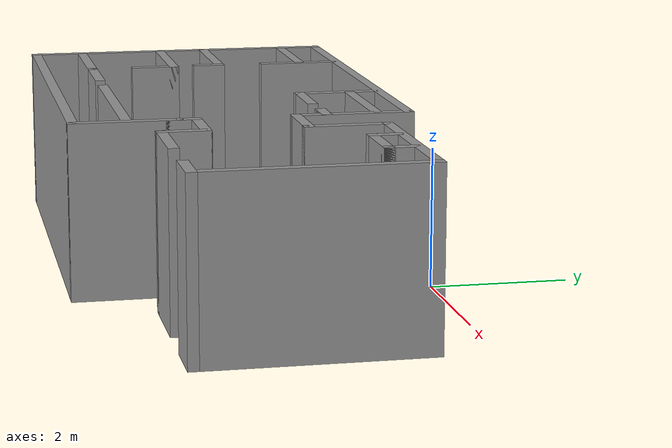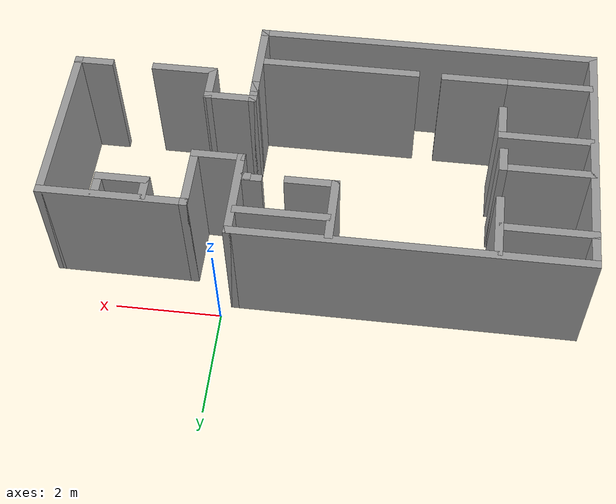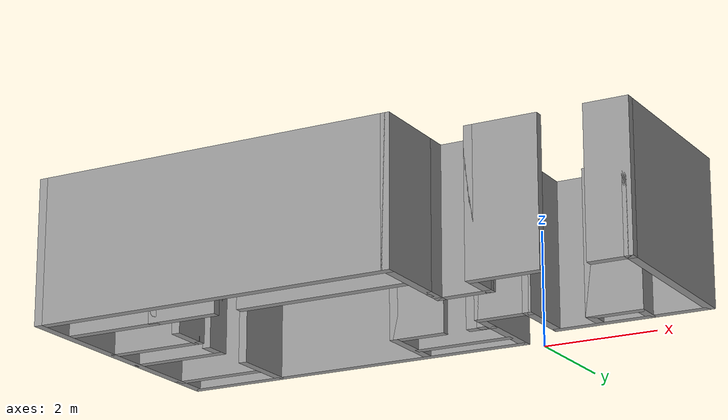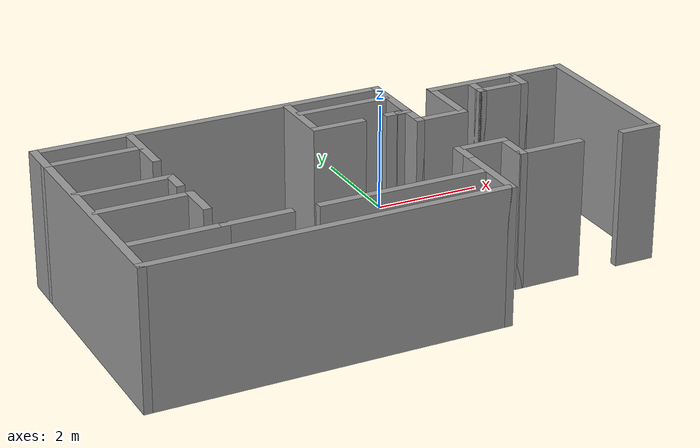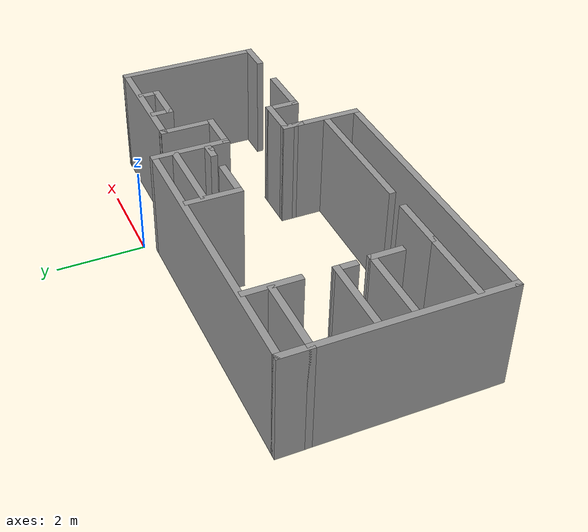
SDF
<?xml version='1.0'?>
<sdf version='1.6'>
  <model name='gusrud2_bulid'>
    <pose frame=''>-1.685 -2.65 0 0 -0 0</pose>
    <link name='Wall_0'>
      <collision name='Wall_0_Collision'>
        <geometry>
          <box>
            <size>4.25 0.15 2.5</size>
          </box>
        </geometry>
        <pose frame=''>0 0 1.25 0 -0 0</pose>
      </collision>
      <visual name='Wall_0_Visual'>
        <pose frame=''>0 0 1.25 0 -0 0</pose>
        <geometry>
          <box>
            <size>4.25 0.15 2.5</size>
          </box>
        </geometry>
        <material>
          <script>
            <uri>file://media/materials/scripts/gazebo.material</uri>
            <name>Gazebo/Grey</name>
          </script>
          <ambient>1 1 1 1</ambient>
        </material>
        <meta>
          <layer>0</layer>
        </meta>
      </visual>
      <pose frame=''>-4.905 -0.3 0 0 -0 -1.5708</pose>
    </link>
    <link name='Wall_1'>
      <collision name='Wall_1_Collision'>
        <geometry>
          <box>
            <size>6.5 0.15 2.5</size>
          </box>
        </geometry>
        <pose frame=''>0 0 1.25 0 -0 0</pose>
      </collision>
      <visual name='Wall_1_Visual'>
        <pose frame=''>0 0 1.25 0 -0 0</pose>
        <geometry>
          <box>
            <size>6.5 0.15 2.5</size>
          </box>
        </geometry>
        <material>
          <script>
            <uri>file://media/materials/scripts/gazebo.material</uri>
            <name>Gazebo/Grey</name>
          </script>
          <ambient>1 1 1 1</ambient>
        </material>
        <meta>
          <layer>0</layer>
        </meta>
      </visual>
      <pose frame=''>-1.73 -2.35 0 0 -0 0</pose>
    </link>
    <link name='Wall_11'>
      <collision name='Wall_11_Collision'>
        <geometry>
          <box>
            <size>0.15 0.15 2.5</size>
          </box>
        </geometry>
        <pose frame=''>0 0 1.25 0 -0 0</pose>
      </collision>
      <visual name='Wall_11_Visual'>
        <pose frame=''>0 0 1.25 0 -0 0</pose>
        <geometry>
          <box>
            <size>0.15 0.15 2.5</size>
          </box>
        </geometry>
        <material>
          <script>
            <uri>file://media/materials/scripts/gazebo.material</uri>
            <name>Gazebo/Grey</name>
          </script>
          <ambient>1 1 1 1</ambient>
        </material>
        <meta>
          <layer>0</layer>
        </meta>
      </visual>
      <pose frame=''>2.295 1.85 0 0 -0 0</pose>
    </link>
    <link name='Wall_12'>
      <collision name='Wall_12_Collision'>
        <geometry>
          <box>
            <size>0.16 0.15 2.5</size>
          </box>
        </geometry>
        <pose frame=''>0 0 1.25 0 -0 0</pose>
      </collision>
      <visual name='Wall_12_Visual'>
        <pose frame=''>0 0 1.25 0 -0 0</pose>
        <geometry>
          <box>
            <size>0.16 0.15 2.5</size>
          </box>
        </geometry>
        <material>
          <script>
            <uri>file://media/materials/scripts/gazebo.material</uri>
            <name>Gazebo/Grey</name>
          </script>
          <ambient>1 1 1 1</ambient>
        </material>
        <meta>
          <layer>0</layer>
        </meta>
      </visual>
      <pose frame=''>2.3 1.85 0 0 -0 0</pose>
    </link>
    <link name='Wall_13'>
      <collision name='Wall_13_Collision'>
        <geometry>
          <box>
            <size>2.75 0.15 2.5</size>
          </box>
        </geometry>
        <pose frame=''>0 0 1.25 0 -0 0</pose>
      </collision>
      <visual name='Wall_13_Visual'>
        <pose frame=''>0 0 1.25 0 -0 0</pose>
        <geometry>
          <box>
            <size>2.75 0.15 2.5</size>
          </box>
        </geometry>
        <material>
          <script>
            <uri>file://media/materials/scripts/gazebo.material</uri>
            <name>Gazebo/Grey</name>
          </script>
          <ambient>1 1 1 1</ambient>
        </material>
        <meta>
          <layer>0</layer>
        </meta>
      </visual>
      <pose frame=''>3.605 1.85 0 0 -0 0</pose>
    </link>
    <link name='Wall_14'>
      <collision name='Wall_14_Collision'>
        <geometry>
          <box>
            <size>3.25 0.15 2.5</size>
          </box>
        </geometry>
        <pose frame=''>0 0 1.25 0 -0 0</pose>
      </collision>
      <visual name='Wall_14_Visual'>
        <pose frame=''>0 0 1.25 0 -0 0</pose>
        <geometry>
          <box>
            <size>3.25 0.15 2.5</size>
          </box>
        </geometry>
        <material>
          <script>
            <uri>file://media/materials/scripts/gazebo.material</uri>
            <name>Gazebo/Grey</name>
          </script>
          <ambient>1 1 1 1</ambient>
        </material>
        <meta>
          <layer>0</layer>
        </meta>
      </visual>
      <pose frame=''>4.905 0.3 0 0 -0 -1.5708</pose>
    </link>
    <link name='Wall_15'>
      <collision name='Wall_15_Collision'>
        <geometry>
          <box>
            <size>0.75 0.15 2.5</size>
          </box>
        </geometry>
        <pose frame=''>0 0 1.25 0 -0 0</pose>
      </collision>
      <visual name='Wall_15_Visual'>
        <pose frame=''>0 0 1.25 0 -0 0</pose>
        <geometry>
          <box>
            <size>0.75 0.15 2.5</size>
          </box>
        </geometry>
        <material>
          <script>
            <uri>file://media/materials/scripts/gazebo.material</uri>
            <name>Gazebo/Grey</name>
          </script>
          <ambient>1 1 1 1</ambient>
        </material>
        <meta>
          <layer>0</layer>
        </meta>
      </visual>
      <pose frame=''>4.605 -1.25 0 0 -0 3.14159</pose>
    </link>
    <link name='Wall_17'>
      <collision name='Wall_17_Collision'>
        <geometry>
          <box>
            <size>0.25 0.15 2.5</size>
          </box>
        </geometry>
        <pose frame=''>0 0 1.25 0 -0 0</pose>
      </collision>
      <visual name='Wall_17_Visual'>
        <pose frame=''>0 0 1.25 0 -0 0</pose>
        <geometry>
          <box>
            <size>0.25 0.15 2.5</size>
          </box>
        </geometry>
        <material>
          <script>
            <uri>file://media/materials/scripts/gazebo.material</uri>
            <name>Gazebo/Grey</name>
          </script>
          <ambient>1 1 1 1</ambient>
        </material>
        <meta>
          <layer>0</layer>
        </meta>
      </visual>
      <pose frame=''>1.445 -0.95 0 0 -0 1.5708</pose>
    </link>
    <link name='Wall_2'>
      <collision name='Wall_2_Collision'>
        <geometry>
          <box>
            <size>1.5 0.15 2.5</size>
          </box>
        </geometry>
        <pose frame=''>0 0 1.25 0 -0 0</pose>
      </collision>
      <visual name='Wall_2_Visual'>
        <pose frame=''>0 0 1.25 0 -0 0</pose>
        <geometry>
          <box>
            <size>1.5 0.15 2.5</size>
          </box>
        </geometry>
        <material>
          <script>
            <uri>file://media/materials/scripts/gazebo.material</uri>
            <name>Gazebo/Grey</name>
          </script>
          <ambient>1 1 1 1</ambient>
        </material>
        <meta>
          <layer>0</layer>
        </meta>
      </visual>
      <pose frame=''>1.445 -1.675 0 0 -0 1.5708</pose>
    </link>
    <link name='Wall_20'>
      <collision name='Wall_20_Collision'>
        <geometry>
          <box>
            <size>0.5 0.15 2.5</size>
          </box>
        </geometry>
        <pose frame=''>0 0 1.25 0 -0 0</pose>
      </collision>
      <visual name='Wall_20_Visual'>
        <pose frame=''>0 0 1.25 0 -0 0</pose>
        <geometry>
          <box>
            <size>0.5 0.15 2.5</size>
          </box>
        </geometry>
        <material>
          <script>
            <uri>file://media/materials/scripts/gazebo.material</uri>
            <name>Gazebo/Grey</name>
          </script>
          <ambient>1 1 1 1</ambient>
        </material>
        <meta>
          <layer>0</layer>
        </meta>
      </visual>
      <pose frame=''>1.445 -0.825 0 0 -0 1.5708</pose>
    </link>
    <link name='Wall_21'>
      <collision name='Wall_21_Collision'>
        <geometry>
          <box>
            <size>1 0.15 2.5</size>
          </box>
        </geometry>
        <pose frame=''>0 0 1.25 0 -0 0</pose>
      </collision>
      <visual name='Wall_21_Visual'>
        <pose frame=''>0 0 1.25 0 -0 0</pose>
        <geometry>
          <box>
            <size>1 0.15 2.5</size>
          </box>
        </geometry>
        <material>
          <script>
            <uri>file://media/materials/scripts/gazebo.material</uri>
            <name>Gazebo/Grey</name>
          </script>
          <ambient>1 1 1 1</ambient>
        </material>
        <meta>
          <layer>0</layer>
        </meta>
      </visual>
      <pose frame=''>1.87 -0.65 0 0 -0 0</pose>
    </link>
    <link name='Wall_22'>
      <collision name='Wall_22_Collision'>
        <geometry>
          <box>
            <size>0.75 0.15 2.5</size>
          </box>
        </geometry>
        <pose frame=''>0 0 1.25 0 -0 0</pose>
      </collision>
      <visual name='Wall_22_Visual'>
        <pose frame=''>0 0 1.25 0 -0 0</pose>
        <geometry>
          <box>
            <size>0.75 0.15 2.5</size>
          </box>
        </geometry>
        <material>
          <script>
            <uri>file://media/materials/scripts/gazebo.material</uri>
            <name>Gazebo/Grey</name>
          </script>
          <ambient>1 1 1 1</ambient>
        </material>
        <meta>
          <layer>0</layer>
        </meta>
      </visual>
      <pose frame=''>2.295 -0.95 0 0 -0 -1.5708</pose>
    </link>
    <link name='Wall_23'>
      <collision name='Wall_23_Collision'>
        <geometry>
          <box>
            <size>1.25 0.15 2.5</size>
          </box>
        </geometry>
        <pose frame=''>0 0 1.25 0 -0 0</pose>
      </collision>
      <visual name='Wall_23_Visual'>
        <pose frame=''>0 0 1.25 0 -0 0</pose>
        <geometry>
          <box>
            <size>1.25 0.15 2.5</size>
          </box>
        </geometry>
        <material>
          <script>
            <uri>file://media/materials/scripts/gazebo.material</uri>
            <name>Gazebo/Grey</name>
          </script>
          <ambient>1 1 1 1</ambient>
        </material>
        <meta>
          <layer>0</layer>
        </meta>
      </visual>
      <pose frame=''>2.845 -1.25 0 0 -0 0</pose>
    </link>
    <link name='Wall_25'>
      <collision name='Wall_25_Collision'>
        <geometry>
          <box>
            <size>0.5 0.15 2.5</size>
          </box>
        </geometry>
        <pose frame=''>0 0 1.25 0 -0 0</pose>
      </collision>
      <visual name='Wall_25_Visual'>
        <pose frame=''>0 0 1.25 0 -0 0</pose>
        <geometry>
          <box>
            <size>0.5 0.15 2.5</size>
          </box>
        </geometry>
        <material>
          <script>
            <uri>file://media/materials/scripts/gazebo.material</uri>
            <name>Gazebo/Grey</name>
          </script>
          <ambient>1 1 1 1</ambient>
        </material>
        <meta>
          <layer>0</layer>
        </meta>
      </visual>
      <pose frame=''>3.065 1.625 0 0 -0 -1.5708</pose>
    </link>
    <link name='Wall_26'>
      <collision name='Wall_26_Collision'>
        <geometry>
          <box>
            <size>1 0.15 2.5</size>
          </box>
        </geometry>
        <pose frame=''>0 0 1.25 0 -0 0</pose>
      </collision>
      <visual name='Wall_26_Visual'>
        <pose frame=''>0 0 1.25 0 -0 0</pose>
        <geometry>
          <box>
            <size>1 0.15 2.5</size>
          </box>
        </geometry>
        <material>
          <script>
            <uri>file://media/materials/scripts/gazebo.material</uri>
            <name>Gazebo/Grey</name>
          </script>
          <ambient>1 1 1 1</ambient>
        </material>
        <meta>
          <layer>0</layer>
        </meta>
      </visual>
      <pose frame=''>3.49 1.45 0 0 -0 0</pose>
    </link>
    <link name='Wall_27'>
      <collision name='Wall_27_Collision'>
        <geometry>
          <box>
            <size>0.5 0.15 2.5</size>
          </box>
        </geometry>
        <pose frame=''>0 0 1.25 0 -0 0</pose>
      </collision>
      <visual name='Wall_27_Visual'>
        <pose frame=''>0 0 1.25 0 -0 0</pose>
        <geometry>
          <box>
            <size>0.5 0.15 2.5</size>
          </box>
        </geometry>
        <material>
          <script>
            <uri>file://media/materials/scripts/gazebo.material</uri>
            <name>Gazebo/Grey</name>
          </script>
          <ambient>1 1 1 1</ambient>
        </material>
        <meta>
          <layer>0</layer>
        </meta>
      </visual>
      <pose frame=''>3.915 1.625 0 0 -0 1.5708</pose>
    </link>
    <link name='Wall_29'>
      <collision name='Wall_29_Collision'>
        <geometry>
          <box>
            <size>1.25 0.15 2.5</size>
          </box>
        </geometry>
        <pose frame=''>0 0 1.25 0 -0 0</pose>
      </collision>
      <visual name='Wall_29_Visual'>
        <pose frame=''>0 0 1.25 0 -0 0</pose>
        <geometry>
          <box>
            <size>1.25 0.15 2.5</size>
          </box>
        </geometry>
        <material>
          <script>
            <uri>file://media/materials/scripts/gazebo.material</uri>
            <name>Gazebo/Grey</name>
          </script>
          <ambient>1 1 1 1</ambient>
        </material>
        <meta>
          <layer>0</layer>
        </meta>
      </visual>
      <pose frame=''>-0.315 1.71 0 0 -0 -1.5708</pose>
    </link>
    <link name='Wall_32'>
      <collision name='Wall_32_Collision'>
        <geometry>
          <box>
            <size>0.15 0.15 2.5</size>
          </box>
        </geometry>
        <pose frame=''>0 0 1.25 0 -0 0</pose>
      </collision>
      <visual name='Wall_32_Visual'>
        <pose frame=''>0 0 1.25 0 -0 0</pose>
        <geometry>
          <box>
            <size>0.15 0.15 2.5</size>
          </box>
        </geometry>
        <material>
          <script>
            <uri>file://media/materials/scripts/gazebo.material</uri>
            <name>Gazebo/Grey</name>
          </script>
          <ambient>1 1 1 1</ambient>
        </material>
        <meta>
          <layer>0</layer>
        </meta>
      </visual>
      <pose frame=''>1.285 1.16 0 0 -0 0</pose>
    </link>
    <link name='Wall_34'>
      <collision name='Wall_34_Collision'>
        <geometry>
          <box>
            <size>0.15 0.15 2.5</size>
          </box>
        </geometry>
        <pose frame=''>0 0 1.25 0 -0 0</pose>
      </collision>
      <visual name='Wall_34_Visual'>
        <pose frame=''>0 0 1.25 0 -0 0</pose>
        <geometry>
          <box>
            <size>0.15 0.15 2.5</size>
          </box>
        </geometry>
        <material>
          <script>
            <uri>file://media/materials/scripts/gazebo.material</uri>
            <name>Gazebo/Grey</name>
          </script>
          <ambient>1 1 1 1</ambient>
        </material>
        <meta>
          <layer>0</layer>
        </meta>
      </visual>
      <pose frame=''>1.285 1.16 0 0 -0 0</pose>
    </link>
    <link name='Wall_37'>
      <collision name='Wall_37_Collision'>
        <geometry>
          <box>
            <size>1.75 0.15 2.5</size>
          </box>
        </geometry>
        <pose frame=''>0 0 1.25 0 -0 0</pose>
      </collision>
      <visual name='Wall_37_Visual'>
        <pose frame=''>0 0 1.25 0 -0 0</pose>
        <geometry>
          <box>
            <size>1.75 0.15 2.5</size>
          </box>
        </geometry>
        <material>
          <script>
            <uri>file://media/materials/scripts/gazebo.material</uri>
            <name>Gazebo/Grey</name>
          </script>
          <ambient>1 1 1 1</ambient>
        </material>
        <meta>
          <layer>0</layer>
        </meta>
      </visual>
      <pose frame=''>0.565 1.9 0 0 -0 0</pose>
    </link>
    <link name='Wall_4'>
      <collision name='Wall_4_Collision'>
        <geometry>
          <box>
            <size>0.75 0.15 2.5</size>
          </box>
        </geometry>
        <pose frame=''>0 0 1.25 0 -0 0</pose>
      </collision>
      <visual name='Wall_4_Visual'>
        <pose frame=''>0 0 1.25 0 -0 0</pose>
        <geometry>
          <box>
            <size>0.75 0.15 2.5</size>
          </box>
        </geometry>
        <material>
          <script>
            <uri>file://media/materials/scripts/gazebo.material</uri>
            <name>Gazebo/Grey</name>
          </script>
          <ambient>1 1 1 1</ambient>
        </material>
        <meta>
          <layer>0</layer>
        </meta>
      </visual>
      <pose frame=''>-4.905 2.05 0 0 -0 1.5708</pose>
    </link>
    <link name='Wall_5'>
      <collision name='Wall_5_Collision'>
        <geometry>
          <box>
            <size>6.5 0.15 2.5</size>
          </box>
        </geometry>
        <pose frame=''>0 0 1.25 0 -0 0</pose>
      </collision>
      <visual name='Wall_5_Visual'>
        <pose frame=''>0 0 1.25 0 -0 0</pose>
        <geometry>
          <box>
            <size>6.5 0.15 2.5</size>
          </box>
        </geometry>
        <material>
          <script>
            <uri>file://media/materials/scripts/gazebo.material</uri>
            <name>Gazebo/Grey</name>
          </script>
          <ambient>1 1 1 1</ambient>
        </material>
        <meta>
          <layer>0</layer>
        </meta>
      </visual>
      <pose frame=''>-1.73 2.35 0 0 -0 0</pose>
    </link>
    <link name='Wall_51'>
      <collision name='Wall_51_Collision'>
        <geometry>
          <box>
            <size>1.75 0.15 2.5</size>
          </box>
        </geometry>
        <pose frame=''>0 0 1.25 0 -0 0</pose>
      </collision>
      <visual name='Wall_51_Visual'>
        <pose frame=''>0 0 1.25 0 -0 0</pose>
        <geometry>
          <box>
            <size>1.75 0.15 2.5</size>
          </box>
        </geometry>
        <material>
          <script>
            <uri>file://media/materials/scripts/gazebo.material</uri>
            <name>Gazebo/Grey</name>
          </script>
          <ambient>1 1 1 1</ambient>
        </material>
        <meta>
          <layer>0</layer>
        </meta>
      </visual>
      <pose frame=''>-4.105 1.75 0 0 -0 0</pose>
    </link>
    <link name='Wall_55'>
      <collision name='Wall_55_Collision'>
        <geometry>
          <box>
            <size>1.75 0.15 2.5</size>
          </box>
        </geometry>
        <pose frame=''>0 0 1.25 0 -0 0</pose>
      </collision>
      <visual name='Wall_55_Visual'>
        <pose frame=''>0 0 1.25 0 -0 0</pose>
        <geometry>
          <box>
            <size>1.75 0.15 2.5</size>
          </box>
        </geometry>
        <material>
          <script>
            <uri>file://media/materials/scripts/gazebo.material</uri>
            <name>Gazebo/Grey</name>
          </script>
          <ambient>1 1 1 1</ambient>
        </material>
        <meta>
          <layer>0</layer>
        </meta>
      </visual>
      <pose frame=''>-4.025 -0.3 0 0 -0 0</pose>
    </link>
    <link name='Wall_6'>
      <collision name='Wall_6_Collision'>
        <geometry>
          <box>
            <size>1.75 0.15 2.5</size>
          </box>
        </geometry>
        <pose frame=''>0 0 1.25 0 -0 0</pose>
      </collision>
      <visual name='Wall_6_Visual'>
        <pose frame=''>0 0 1.25 0 -0 0</pose>
        <geometry>
          <box>
            <size>1.75 0.15 2.5</size>
          </box>
        </geometry>
        <material>
          <script>
            <uri>file://media/materials/scripts/gazebo.material</uri>
            <name>Gazebo/Grey</name>
          </script>
          <ambient>1 1 1 1</ambient>
        </material>
        <meta>
          <layer>0</layer>
        </meta>
      </visual>
      <pose frame=''>1.445 1.55 0 0 -0 -1.5708</pose>
    </link>
    <link name='Wall_61'>
      <collision name='Wall_61_Collision'>
        <geometry>
          <box>
            <size>1.75 0.15 2.5</size>
          </box>
        </geometry>
        <pose frame=''>0 0 1.25 0 -0 0</pose>
      </collision>
      <visual name='Wall_61_Visual'>
        <pose frame=''>0 0 1.25 0 -0 0</pose>
        <geometry>
          <box>
            <size>1.75 0.15 2.5</size>
          </box>
        </geometry>
        <material>
          <script>
            <uri>file://media/materials/scripts/gazebo.material</uri>
            <name>Gazebo/Grey</name>
          </script>
          <ambient>1 1 1 1</ambient>
        </material>
        <meta>
          <layer>0</layer>
        </meta>
      </visual>
      <pose frame=''>-4.015 -1.6 0 0 -0 3.14159</pose>
    </link>
    <link name='Wall_63'>
      <collision name='Wall_63_Collision'>
        <geometry>
          <box>
            <size>1.75 0.15 2.5</size>
          </box>
        </geometry>
        <pose frame=''>0 0 1.25 0 -0 0</pose>
      </collision>
      <visual name='Wall_63_Visual'>
        <pose frame=''>0 0 1.25 0 -0 0</pose>
        <geometry>
          <box>
            <size>1.75 0.15 2.5</size>
          </box>
        </geometry>
        <material>
          <script>
            <uri>file://media/materials/scripts/gazebo.material</uri>
            <name>Gazebo/Grey</name>
          </script>
          <ambient>1 1 1 1</ambient>
        </material>
        <meta>
          <layer>0</layer>
        </meta>
      </visual>
      <pose frame=''>-4.065 0.44 0 0 -0 0</pose>
    </link>
    <link name='Wall_65'>
      <collision name='Wall_65_Collision'>
        <geometry>
          <box>
            <size>0.15 0.15 2.5</size>
          </box>
        </geometry>
        <pose frame=''>0 0 1.25 0 -0 0</pose>
      </collision>
      <visual name='Wall_65_Visual'>
        <pose frame=''>0 0 1.25 0 -0 0</pose>
        <geometry>
          <box>
            <size>0.15 0.15 2.5</size>
          </box>
        </geometry>
        <material>
          <script>
            <uri>file://media/materials/scripts/gazebo.material</uri>
            <name>Gazebo/Grey</name>
          </script>
          <ambient>1 1 1 1</ambient>
        </material>
        <meta>
          <layer>0</layer>
        </meta>
      </visual>
      <pose frame=''>1.445 0.75 0 0 -0 0</pose>
    </link>
    <link name='Wall_66'>
      <collision name='Wall_66_Collision'>
        <geometry>
          <box>
            <size>1 0.15 2.5</size>
          </box>
        </geometry>
        <pose frame=''>0 0 1.25 0 -0 0</pose>
      </collision>
      <visual name='Wall_66_Visual'>
        <pose frame=''>0 0 1.25 0 -0 0</pose>
        <geometry>
          <box>
            <size>1 0.15 2.5</size>
          </box>
        </geometry>
        <material>
          <script>
            <uri>file://media/materials/scripts/gazebo.material</uri>
            <name>Gazebo/Grey</name>
          </script>
          <ambient>1 1 1 1</ambient>
        </material>
        <meta>
          <layer>0</layer>
        </meta>
      </visual>
      <pose frame=''>1.87 0.75 0 0 -0 0</pose>
    </link>
    <link name='Wall_68'>
      <collision name='Wall_68_Collision'>
        <geometry>
          <box>
            <size>1.25 0.15 2.5</size>
          </box>
        </geometry>
        <pose frame=''>0 0 1.25 0 -0 0</pose>
      </collision>
      <visual name='Wall_68_Visual'>
        <pose frame=''>0 0 1.25 0 -0 0</pose>
        <geometry>
          <box>
            <size>1.25 0.15 2.5</size>
          </box>
        </geometry>
        <material>
          <script>
            <uri>file://media/materials/scripts/gazebo.material</uri>
            <name>Gazebo/Grey</name>
          </script>
          <ambient>1 1 1 1</ambient>
        </material>
        <meta>
          <layer>0</layer>
        </meta>
      </visual>
      <pose frame=''>-3.235 1.73 0 0 -0 -1.5708</pose>
    </link>
    <link name='Wall_71'>
      <collision name='Wall_71_Collision'>
        <geometry>
          <box>
            <size>0.5 0.15 2.5</size>
          </box>
        </geometry>
        <pose frame=''>0 0 1.25 0 -0 0</pose>
      </collision>
      <visual name='Wall_71_Visual'>
        <pose frame=''>0 0 1.25 0 -0 0</pose>
        <geometry>
          <box>
            <size>0.5 0.15 2.5</size>
          </box>
        </geometry>
        <material>
          <script>
            <uri>file://media/materials/scripts/gazebo.material</uri>
            <name>Gazebo/Grey</name>
          </script>
          <ambient>1 1 1 1</ambient>
        </material>
        <meta>
          <layer>0</layer>
        </meta>
      </visual>
      <pose frame=''>-3.265 0.265 0 0 -0 -1.5708</pose>
    </link>
    <link name='Wall_73'>
      <collision name='Wall_73_Collision'>
        <geometry>
          <box>
            <size>0.75 0.15 2.5</size>
          </box>
        </geometry>
        <pose frame=''>0 0 1.25 0 -0 0</pose>
      </collision>
      <visual name='Wall_73_Visual'>
        <pose frame=''>0 0 1.25 0 -0 0</pose>
        <geometry>
          <box>
            <size>0.75 0.15 2.5</size>
          </box>
        </geometry>
        <material>
          <script>
            <uri>file://media/materials/scripts/gazebo.material</uri>
            <name>Gazebo/Grey</name>
          </script>
          <ambient>1 1 1 1</ambient>
        </material>
        <meta>
          <layer>0</layer>
        </meta>
      </visual>
      <pose frame=''>-3.225 -0.6 0 0 -0 -1.5708</pose>
    </link>
    <link name='Wall_75'>
      <collision name='Wall_75_Collision'>
        <geometry>
          <box>
            <size>1.25 0.15 2.5</size>
          </box>
        </geometry>
        <pose frame=''>0 0 1.25 0 -0 0</pose>
      </collision>
      <visual name='Wall_75_Visual'>
        <pose frame=''>0 0 1.25 0 -0 0</pose>
        <geometry>
          <box>
            <size>1.25 0.15 2.5</size>
          </box>
        </geometry>
        <material>
          <script>
            <uri>file://media/materials/scripts/gazebo.material</uri>
            <name>Gazebo/Grey</name>
          </script>
          <ambient>1 1 1 1</ambient>
        </material>
        <meta>
          <layer>0</layer>
        </meta>
      </visual>
      <pose frame=''>-2.665 -1.6 0 0 -0 0</pose>
    </link>
    <link name='Wall_77'>
      <collision name='Wall_77_Collision'>
        <geometry>
          <box>
            <size>3 0.15 2.5</size>
          </box>
        </geometry>
        <pose frame=''>0 0 1.25 0 -0 0</pose>
      </collision>
      <visual name='Wall_77_Visual'>
        <pose frame=''>0 0 1.25 0 -0 0</pose>
        <geometry>
          <box>
            <size>3 0.15 2.5</size>
          </box>
        </geometry>
        <material>
          <script>
            <uri>file://media/materials/scripts/gazebo.material</uri>
            <name>Gazebo/Grey</name>
          </script>
          <ambient>1 1 1 1</ambient>
        </material>
        <meta>
          <layer>0</layer>
        </meta>
      </visual>
      <pose frame=''>-0.12 -1.61 0 0 -0 0</pose>
    </link>
    <link name='Wall_79'>
      <collision name='Wall_79_Collision'>
        <geometry>
          <box>
            <size>1 0.15 2.5</size>
          </box>
        </geometry>
        <pose frame=''>0 0 1.25 0 -0 0</pose>
      </collision>
      <visual name='Wall_79_Visual'>
        <pose frame=''>0 0 1.25 0 -0 0</pose>
        <geometry>
          <box>
            <size>1 0.15 2.5</size>
          </box>
        </geometry>
        <material>
          <script>
            <uri>file://media/materials/scripts/gazebo.material</uri>
            <name>Gazebo/Grey</name>
          </script>
          <ambient>1 1 1 1</ambient>
        </material>
        <meta>
          <layer>0</layer>
        </meta>
      </visual>
      <pose frame=''>0.11 1.16 0 0 -0 0</pose>
    </link>
    <link name='Wall_8'>
      <collision name='Wall_8_Collision'>
        <geometry>
          <box>
            <size>1.25 0.15 2.5</size>
          </box>
        </geometry>
        <pose frame=''>0 0 1.25 0 -0 0</pose>
      </collision>
      <visual name='Wall_8_Visual'>
        <pose frame=''>0 0 1.25 0 -0 0</pose>
        <geometry>
          <box>
            <size>1.25 0.15 2.5</size>
          </box>
        </geometry>
        <material>
          <script>
            <uri>file://media/materials/scripts/gazebo.material</uri>
            <name>Gazebo/Grey</name>
          </script>
          <ambient>1 1 1 1</ambient>
        </material>
        <meta>
          <layer>0</layer>
        </meta>
      </visual>
      <pose frame=''>2.295 1.3 0 0 -0 1.5708</pose>
    </link>
    <link name='Wall_88'>
      <collision name='Wall_88_Collision'>
        <geometry>
          <box>
            <size>0.5 0.15 2.5</size>
          </box>
        </geometry>
        <pose frame=''>0 0 1.25 0 -0 0</pose>
      </collision>
      <visual name='Wall_88_Visual'>
        <pose frame=''>0 0 1.25 0 -0 0</pose>
        <geometry>
          <box>
            <size>0.5 0.15 2.5</size>
          </box>
        </geometry>
        <material>
          <script>
            <uri>file://media/materials/scripts/gazebo.material</uri>
            <name>Gazebo/Grey</name>
          </script>
          <ambient>1 1 1 1</ambient>
        </material>
        <meta>
          <layer>0</layer>
        </meta>
      </visual>
      <pose frame=''>1.25591 1.18138 0 0 -0 0</pose>
    </link>
    <static>1</static>
  </model>
</sdf>
